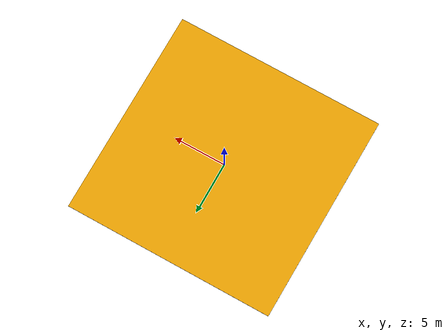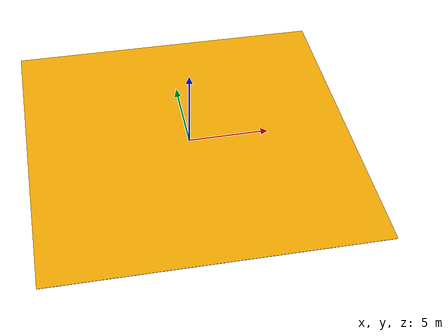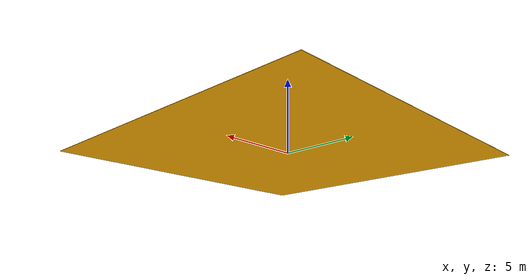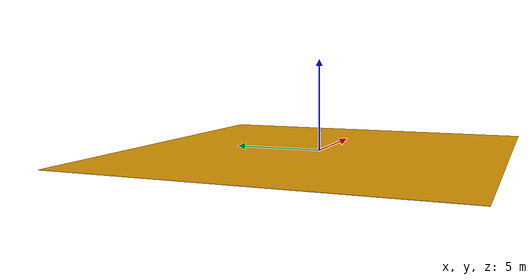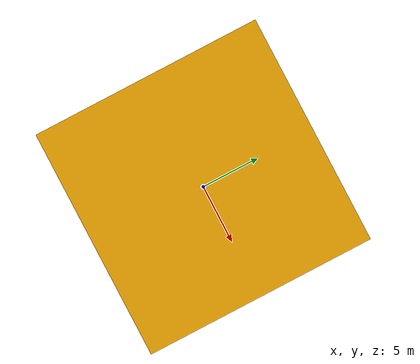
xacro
<?xml version='1.0' encoding='utf-8'?>
<robot xmlns:xacro="http://ros.org/wiki/xacro" name="xarm_gripper">
  <xacro:include filename="$(find xarm_gripper)/urdf/xarm_gripper_model.xacro" />

<link name="bottom_link">
	   <inertial>
		  <origin
		    xyz="0 0 0"
		    rpy="0 0 0" />
		  <mass
		    value="444.11" />
		  <inertia
		    ixx="337.5"
		    ixy="3.3871E-16"
		    ixz="-3.6082E-14"
		    iyy="674.82"
		    iyz="1.3219E-17"
		    izz="337.5" />
		</inertial>
        <visual>
              <origin xyz=" 0 0 0"  rpy="0 0 0"/>
                  <geometry>
                       <box size="20 20 0.02" />
                  </geometry>
              <material name="Hide" />
        </visual>
        <collision>
            <origin xyz=" 0 0 0"  rpy="0 0 0"/>
            <geometry>
                <box size="20 20 0.05" />
            </geometry>
        </collision>
    </link>

  <xacro:load_gripper attach_to="bottom_link" rpy="0 0 0" xyz="0 0 1"/>

</robot>

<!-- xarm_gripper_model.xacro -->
<robot xmlns:xacro="http://ros.org/wiki/xacro"
       name="xarm_gripper" >

  <!-- common stuff -->
  <xacro:include filename="$(find xarm_description)/urdf/common.gazebo.xacro" />

  <!-- xarm_gripper -->
  <xacro:include filename="$(find xarm_gripper)/urdf/xarm_gripper.urdf.xacro" />
  <xacro:include filename="$(find xarm_gripper)/urdf/xarm_gripper.transmission.xacro" />
  <xacro:include filename="$(find xarm_gripper)/urdf/xarm_gripper.gazebo.xacro" />

  <xacro:macro name="load_gripper" params="prefix:='' attach_to:='' ns:='xarm' xyz:='0 0 0' rpy:='0 0 0' effort_control:='false' ">
    <!-- gazebo plugin -->

    <xacro:xarm_gripper_urdf prefix="${prefix}" attach_to="${attach_to}" xyz="${xyz}" rpy="${rpy}" />

    <xacro:xarm_gripper_transmission prefix="${prefix}" hard_interface="PositionJointInterface" />

    <xacro:xarm_gripper_gazebo prefix="${prefix}" />

    <!-- mimic_joint_plugin has to be installed: -->
    <xacro:mimic_joint_plugin_gazebo name_prefix="${prefix}left_finger_joint"
    following_joint="${prefix}drive_joint" mimic_joint="${prefix}left_finger_joint"
    has_pid="false" multiplier="1.0" max_effort="10.0" />

    <xacro:mimic_joint_plugin_gazebo name_prefix="${prefix}left_inner_knuckle_joint"
    following_joint="${prefix}drive_joint" mimic_joint="${prefix}left_inner_knuckle_joint"
    has_pid="false" multiplier="1.0" max_effort="10.0" />

    <xacro:mimic_joint_plugin_gazebo name_prefix="${prefix}right_outer_knuckle_joint"
    following_joint="${prefix}drive_joint" mimic_joint="${prefix}right_outer_knuckle_joint"
    has_pid="false" multiplier="1.0" max_effort="10.0" />

    <xacro:mimic_joint_plugin_gazebo name_prefix="${prefix}right_finger_joint"
    following_joint="${prefix}drive_joint" mimic_joint="${prefix}right_finger_joint"
    has_pid="false" multiplier="1.0" max_effort="10.0" />

    <xacro:mimic_joint_plugin_gazebo name_prefix="${prefix}right_inner_knuckle_joint"
    following_joint="${prefix}drive_joint" mimic_joint="${prefix}right_inner_knuckle_joint"
    has_pid="false" multiplier="1.0" max_effort="10.0" />

  </xacro:macro>
</robot>

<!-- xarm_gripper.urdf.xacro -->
<robot xmlns:xacro="http://ros.org/wiki/xacro" name="xarm_gripper">
  <xacro:macro name="xarm_gripper_urdf" params="prefix:='' attach_to:='' rpy:='0 0 0' xyz:='0 0 0' ">
  <xacro:unless value="${attach_to == ''}">
    <joint name="${prefix}gripper_fix" type="fixed">
      <parent link="${attach_to}"/>
      <child link="${prefix}xarm_gripper_base_link"/>
      <origin xyz="${xyz}" rpy="${rpy}"/>
    </joint>
  </xacro:unless>
  <link
    name="${prefix}xarm_gripper_base_link">
    <inertial>
      <origin
        xyz="-0.00065489 -0.0018497 0.048028"
        rpy="0 0 0" />
      <mass
        value="0.54156" />
      <inertia
        ixx="0.00047106"
        ixy="3.9292E-07"
        ixz="2.6537E-06"
        iyy="0.00033072"
        iyz="-1.0975E-05"
        izz="0.00025642" />
    </inertial>
    <visual>
      <origin
        xyz="0 0 0"
        rpy="0 0 0" />
      <geometry>
        <mesh
          filename="package://xarm_gripper/meshes/base_link.STL" />
      </geometry>
      <material name="White">
        <color rgba="1.0 1.0 1.0 1.0"/>
      </material>
    </visual>
    <collision>
      <origin
        xyz="0 0 0"
        rpy="0 0 0" />
      <geometry>
        <mesh
          filename="package://xarm_gripper/meshes/base_link.STL" />
      </geometry>
    </collision>
  </link>
  <link
    name="${prefix}left_outer_knuckle">
    <inertial>
      <origin
        xyz="2.9948E-14 0.021559 0.015181"
        rpy="0 0 0" />
      <mass
        value="0.033618" />
      <inertia
        ixx="1.9111E-05"
        ixy="-1.8803E-17"
        ixz="-1.1002E-17"
        iyy="6.6256E-06"
        iyz="-7.3008E-06"
        izz="1.3185E-05" />
    </inertial>
    <visual>
      <origin
        xyz="0 0 0"
        rpy="0 0 0" />
      <geometry>
        <mesh
          filename="package://xarm_gripper/meshes/left_outer_knuckle.STL" />
      </geometry>
      <material name="Silver">
        <color rgba="0.753 0.753 0.753 1.0"/>
      </material>
    </visual>
    <collision>
      <origin
        xyz="0 0 0"
        rpy="0 0 0" />
      <geometry>
        <mesh
          filename="package://xarm_gripper/meshes/left_outer_knuckle.STL" />
      </geometry>
    </collision>
  </link>
  <joint
    name="${prefix}drive_joint"
    type="revolute">
    <origin
      xyz="0 0.035 0.059098"
      rpy="0 0 0" />
    <parent
      link="${prefix}xarm_gripper_base_link" />
    <child
      link="${prefix}left_outer_knuckle" />
    <axis
      xyz="1 0 0" />
    <limit
      lower="0"
      upper="0.85"
      effort="50"
      velocity="2" />
  </joint>
  <link
    name="${prefix}left_finger">
    <inertial>
      <origin
        xyz="-2.4536E-14 -0.016413 0.029258"
        rpy="0 0 0" />
      <mass
        value="0.048304" />
      <inertia
        ixx="1.7493E-05"
        ixy="-4.2156E-19"
        ixz="6.9164E-18"
        iyy="1.7225E-05"
        iyz="4.6433E-06"
        izz="5.1466E-06" />
    </inertial>
    <visual>
      <origin
        xyz="0 0 0"
        rpy="0 0 0" />
      <geometry>
        <mesh
          filename="package://xarm_gripper/meshes/left_finger.STL" />
      </geometry>
      <material name="Silver">
        <color rgba="0.753 0.753 0.753 1.0"/>
      </material>
    </visual>
    <collision>
      <origin
        xyz="0 0 0"
        rpy="0 0 0" />
      <geometry>
        <mesh
          filename="package://xarm_gripper/meshes/left_finger.STL" />
      </geometry>
    </collision>
  </link>
  <joint
    name="${prefix}left_finger_joint"
    type="revolute">
    <origin
      xyz="0 0.035465 0.042039"
      rpy="0 0 0" />
    <parent
      link="${prefix}left_outer_knuckle" />
    <child
      link="${prefix}left_finger" />
    <axis
      xyz="-1 0 0" />
    <limit
      lower="0"
      upper="0.85"
      effort="50"
      velocity="2" />
    <mimic joint="${prefix}drive_joint" multiplier="1" offset="0" />
  </joint>
  <link
    name="${prefix}left_inner_knuckle">
    <inertial>
      <origin
        xyz="1.86600784687907E-06 0.0220467847633621 0.0261334672830885"
        rpy="0 0 0" />
      <mass
        value="0.0230125781256706" />
      <inertia
        ixx="6.09490024271906E-06"
        ixy="6.06651326160071E-11"
        ixz="7.19102670500635E-11"
        iyy="6.01955084375188E-06"
        iyz="-2.75316812991721E-06"
        izz="5.07862004479903E-06" />
    </inertial>
    <visual>
      <origin
        xyz="0 0 0"
        rpy="0 0 0" />
      <geometry>
        <mesh
          filename="package://xarm_gripper/meshes/left_inner_knuckle.STL" />
      </geometry>
      <material name="Silver">
        <color rgba="0.753 0.753 0.753 1.0"/>
      </material>
    </visual>
    <collision>
      <origin
        xyz="0 0 0"
        rpy="0 0 0" />
      <geometry>
        <mesh
          filename="package://xarm_gripper/meshes/left_inner_knuckle.STL" />
      </geometry>
    </collision>
  </link>
  <joint
    name="${prefix}left_inner_knuckle_joint"
    type="revolute">
    <origin
      xyz="0 0.02 0.074098"
      rpy="0 0 0" />
    <parent
      link="${prefix}xarm_gripper_base_link" />
    <child
      link="${prefix}left_inner_knuckle" />
    <axis
      xyz="1 0 0" />
    <limit
      lower="0"
      upper="0.85"
      effort="50"
      velocity="2" />
    <mimic joint="${prefix}drive_joint" multiplier="1" offset="0" />
  </joint>
  <link
    name="${prefix}right_outer_knuckle">
    <inertial>
      <origin
        xyz="-3.1669E-14 -0.021559 0.015181"
        rpy="0 0 0" />
      <mass
        value="0.033618" />
      <inertia
        ixx="1.9111E-05"
        ixy="-1.8789E-17"
        ixz="1.0986E-17"
        iyy="6.6256E-06"
        iyz="7.3008E-06"
        izz="1.3185E-05" />
    </inertial>
    <visual>
      <origin
        xyz="0 0 0"
        rpy="0 0 0" />
      <geometry>
        <mesh
          filename="package://xarm_gripper/meshes/right_outer_knuckle.STL" />
      </geometry>
      <material name="Silver">
        <color rgba="0.753 0.753 0.753 1.0"/>
      </material>
    </visual>
    <collision>
      <origin
        xyz="0 0 0"
        rpy="0 0 0" />
      <geometry>
        <mesh
          filename="package://xarm_gripper/meshes/right_outer_knuckle.STL" />
      </geometry>
    </collision>
  </link>
  <joint
    name="${prefix}right_outer_knuckle_joint"
    type="revolute">
    <origin
      xyz="0 -0.035 0.059098"
      rpy="0 0 0" />
    <parent
      link="${prefix}xarm_gripper_base_link" />
    <child
      link="${prefix}right_outer_knuckle" />
    <axis
      xyz="-1 0 0" />
    <limit
      lower="0"
      upper="0.85"
      effort="50"
      velocity="2" />
    <mimic joint="${prefix}drive_joint" multiplier="1" offset="0" />
  </joint>
  <link
    name="${prefix}right_finger">
    <inertial>
      <origin
        xyz="2.5618E-14 0.016413 0.029258"
        rpy="0 0 0" />
      <mass
        value="0.048304" />
      <inertia
        ixx="1.7493E-05"
        ixy="-5.0014E-19"
        ixz="-7.5079E-18"
        iyy="1.7225E-05"
        iyz="-4.6435E-06"
        izz="5.1466E-06" />
    </inertial>
    <visual>
      <origin
        xyz="0 0 0"
        rpy="0 0 0" />
      <geometry>
        <mesh
          filename="package://xarm_gripper/meshes/right_finger.STL" />
      </geometry>
      <material name="Silver">
        <color rgba="0.753 0.753 0.753 1.0"/>
      </material>
    </visual>
    <collision>
      <origin
        xyz="0 0 0"
        rpy="0 0 0" />
      <geometry>
        <mesh
          filename="package://xarm_gripper/meshes/right_finger.STL" />
      </geometry>
    </collision>
  </link>
  <joint
    name="${prefix}right_finger_joint"
    type="revolute">
    <origin
      xyz="0 -0.035465 0.042039"
      rpy="0 0 0" />
    <parent
      link="${prefix}right_outer_knuckle" />
    <child
      link="${prefix}right_finger" />
    <axis
      xyz="1 0 0" />
    <limit
      lower="0"
      upper="0.85"
      effort="50"
      velocity="2" />
    <mimic joint="${prefix}drive_joint" multiplier="1" offset="0" />
  </joint>
  <link
    name="${prefix}right_inner_knuckle">
    <inertial>
      <origin
        xyz="1.866E-06 -0.022047 0.026133"
        rpy="0 0 0" />
      <mass
        value="0.023013" />
      <inertia
        ixx="6.0949E-06"
        ixy="-6.0665E-11"
        ixz="7.191E-11"
        iyy="6.0197E-06"
        iyz="2.7531E-06"
        izz="5.0784E-06" />
    </inertial>
    <visual>
      <origin
        xyz="0 0 0"
        rpy="0 0 0" />
      <geometry>
        <mesh
          filename="package://xarm_gripper/meshes/right_inner_knuckle.STL" />
      </geometry>
      <material name="Silver">
        <color rgba="0.753 0.753 0.753 1.0"/>
      </material>
    </visual>
    <collision>
      <origin
        xyz="0 0 0"
        rpy="0 0 0" />
      <geometry>
        <mesh
          filename="package://xarm_gripper/meshes/right_inner_knuckle.STL" />
      </geometry>
    </collision>
  </link>
  <joint
    name="${prefix}right_inner_knuckle_joint"
    type="revolute">
    <origin
      xyz="0 -0.02 0.074098"
      rpy="0 0 0" />
    <parent
      link="${prefix}xarm_gripper_base_link" />
    <child
      link="${prefix}right_inner_knuckle" />
    <axis
      xyz="-1 0 0" />
    <limit
      lower="0"
      upper="0.85"
      effort="50"
      velocity="2" />
    <mimic joint="${prefix}drive_joint" multiplier="1" offset="0" />
  </joint>

  </xacro:macro>

</robot>
